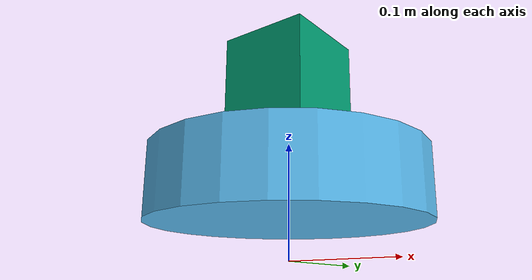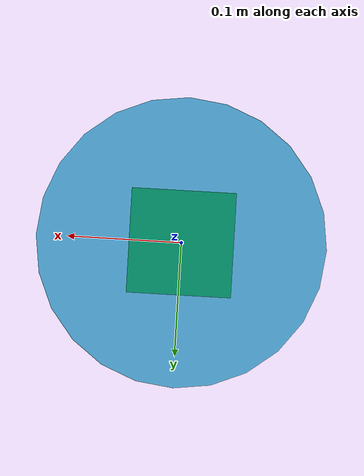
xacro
<?xml version="1.0"?>

<robot name="hexapod_base" xmlns:xacro="https://www.ros.org/wiki/xacro">

	<link name="world"/>

	<joint name="init_joint" type="fixed">
 	    <parent link="world"/>
 	    <child link="hex_base1"/>
 	</joint>

	<link name="hex_base1">
       	<visual>
       		<origin xyz="0 0 0.06" rpy="0 0 0" />
         	<geometry>
           		<cylinder length="0.06" radius="0.12"/>
         	</geometry>
       	</visual>
       	<collision>
       		<origin xyz="0 0 0.06" rpy="0 0 0" />
         	<geometry>
           		<cylinder length="0.06" radius="0.12"/>
        	</geometry>
    	</collision>
    	<inertial>
      			<origin xyz="0 0 0" rpy="0 0 0"/>
      			<mass value="10"/>
      			<inertia ixx="1"			ixy="0" 		ixz="0"
      					 iyx="0"			iyy="1" 		iyz="0"
      					 izx="0"  			izy="0" 		izz="1"/>
    	</inertial>
    </link>

	<joint name="tobox" type="fixed">
 	    <parent link="hex_base1"/>
 	    <child link="hex_base2"/>
 	    <origin xyz="0 0 0.06"/>
 	</joint>

    <link name="hex_base2">
       	<visual>
       		<origin xyz="0 0 0.06" rpy="0 0 0" />
         	<geometry>
           		<box size="0.08 0.08 0.15"/>
         	</geometry>
       	</visual>
       	<collision>
       		<origin xyz="0 0 0.06" rpy="0 0 0" />
         	<geometry>
           		<box size="0.08 0.08 0.15"/>
        	</geometry>
    	</collision>
    	<inertial>
      			<origin xyz="0 0 0.06" rpy="0 0 0"/>
      			<mass value="1"/>
      			<inertia ixx="1"			ixy="0" 		ixz="0"
      					 iyx="0"			iyy="1" 		iyz="0"
      					 izx="0"  			izy="0" 		izz="1"/>
    	</inertial>
    </link>

</robot>
